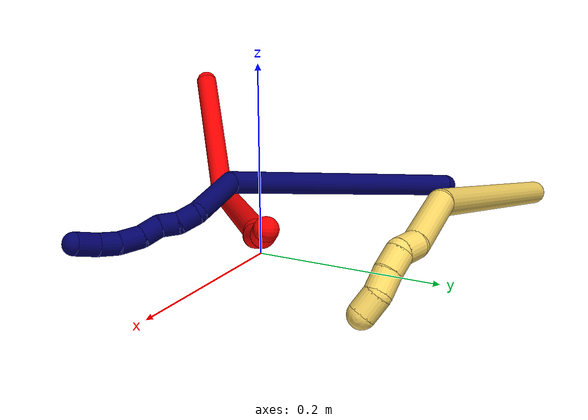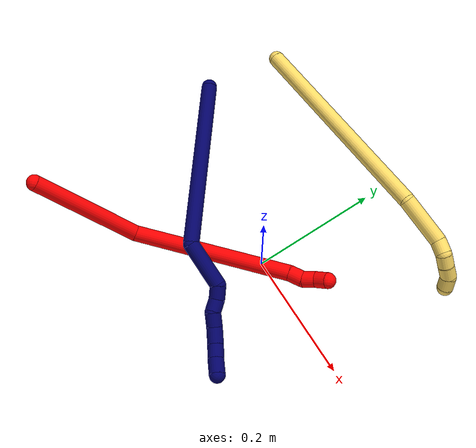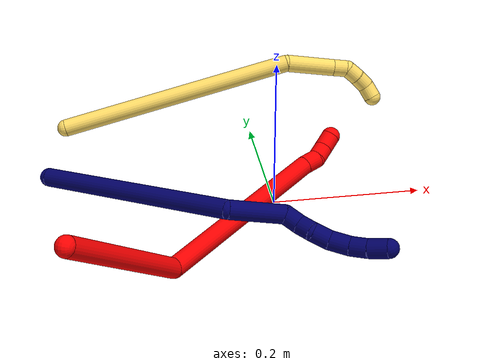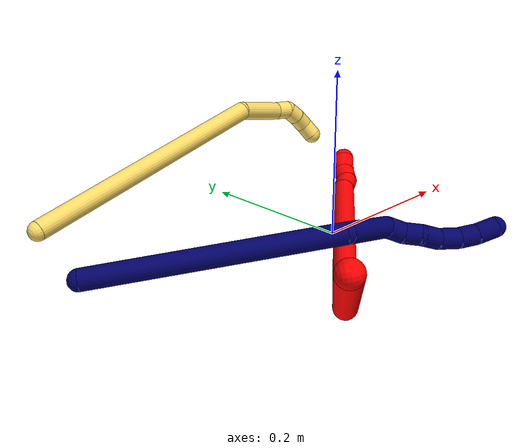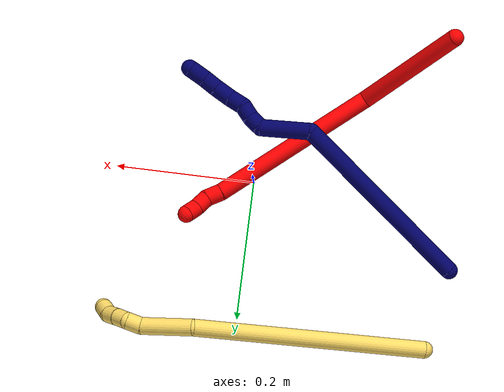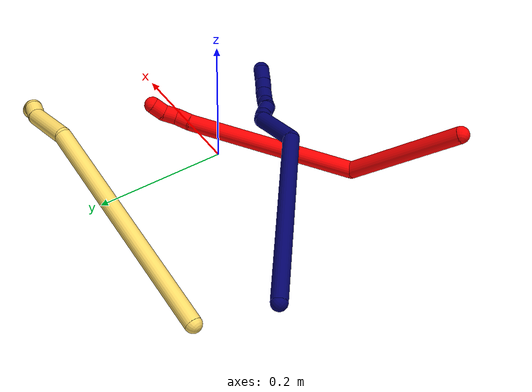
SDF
<sdf version="1.7">
 <world name="default">
  <model name="2">
   <static>0</static>
   <link name="2">
    <collision name="collision-cylinder-e_1_1_4">
     <pose>0.084828 -0.034982 0.005211 1.42292 1.17578 1.04302</pose>
     <geometry><cylinder><radius>0.0125</radius><length>0.183811</length></cylinder></geometry>
     <surface>
      <friction><ode><mu>1.16</mu><mu2>1.16</mu2><slip1>0</slip1><slip2>0</slip2></ode></friction>
      <contact><ode><kp>1e+06</kp><kd>1</kd><max_vel>0</max_vel><min_depth>0.001</min_depth></ode></contact>
     </surface>
    </collision>
    <visual name="visual-cylinder-e_1_1_4">
     <pose>0.084828 -0.034982 0.005211 1.42292 1.17578 1.04302</pose>
     <geometry><cylinder><radius>0.0125</radius><length>0.183811</length></cylinder></geometry>
     <material><ambient>1 0 0 1</ambient></material>
    </visual>
    <collision name="collision-cylinder-e_2_4_5">
     <pose>0.285411 -0.02598 0.034184 -1.07547 1.16312 -0.747261</pose>
     <geometry><cylinder><radius>0.0125</radius><length>0.252179</length></cylinder></geometry>
     <surface>
      <friction><ode><mu>1.16</mu><mu2>1.16</mu2><slip1>0</slip1><slip2>0</slip2></ode></friction>
      <contact><ode><kp>1e+06</kp><kd>1</kd><max_vel>0</max_vel><min_depth>0.001</min_depth></ode></contact>
     </surface>
    </collision>
    <visual name="visual-cylinder-e_2_4_5">
     <pose>0.285411 -0.02598 0.034184 -1.07547 1.16312 -0.747261</pose>
     <geometry><cylinder><radius>0.0125</radius><length>0.252179</length></cylinder></geometry>
     <material><ambient>1 0 0 1</ambient></material>
    </visual>
    <collision name="collision-cylinder-e_3_5_6">
     <pose>0.411002 0.021438 0.061988 -0.704292 1.07614 -0.431776</pose>
     <geometry><cylinder><radius>0.0125</radius><length>0.022348</length></cylinder></geometry>
     <surface>
      <friction><ode><mu>1.16</mu><mu2>1.16</mu2><slip1>0</slip1><slip2>0</slip2></ode></friction>
      <contact><ode><kp>1e+06</kp><kd>1</kd><max_vel>0</max_vel><min_depth>0.001</min_depth></ode></contact>
     </surface>
    </collision>
    <visual name="visual-cylinder-e_3_5_6">
     <pose>0.411002 0.021438 0.061988 -0.704292 1.07614 -0.431776</pose>
     <geometry><cylinder><radius>0.0125</radius><length>0.022348</length></cylinder></geometry>
     <material><ambient>1 0 0 1</ambient></material>
    </visual>
    <collision name="collision-cylinder-e_4_6_7">
     <pose>0.429712 0.030582 0.066377 -1.51021 0.998336 -0.948228</pose>
     <geometry><cylinder><radius>0.0125</radius><length>0.021117</length></cylinder></geometry>
     <surface>
      <friction><ode><mu>1.16</mu><mu2>1.16</mu2><slip1>0</slip1><slip2>0</slip2></ode></friction>
      <contact><ode><kp>1e+06</kp><kd>1</kd><max_vel>0</max_vel><min_depth>0.001</min_depth></ode></contact>
     </surface>
    </collision>
    <visual name="visual-cylinder-e_4_6_7">
     <pose>0.429712 0.030582 0.066377 -1.51021 0.998336 -0.948228</pose>
     <geometry><cylinder><radius>0.0125</radius><length>0.021117</length></cylinder></geometry>
     <material><ambient>1 0 0 1</ambient></material>
    </visual>
    <collision name="collision-cylinder-e_5_7_2">
     <pose>0.445244 0.043821 0.068843 -1.29643 0.705091 -0.543525</pose>
     <geometry><cylinder><radius>0.0125</radius><length>0.020545</length></cylinder></geometry>
     <surface>
      <friction><ode><mu>1.16</mu><mu2>1.16</mu2><slip1>0</slip1><slip2>0</slip2></ode></friction>
      <contact><ode><kp>1e+06</kp><kd>1</kd><max_vel>0</max_vel><min_depth>0.001</min_depth></ode></contact>
     </surface>
    </collision>
    <visual name="visual-cylinder-e_5_7_2">
     <pose>0.445244 0.043821 0.068843 -1.29643 0.705091 -0.543525</pose>
     <geometry><cylinder><radius>0.0125</radius><length>0.020545</length></cylinder></geometry>
     <material><ambient>1 0 0 1</ambient></material>
    </visual>
    <collision name="collision-sphere-2">
     <pose>0.451902 0.051351 0.070962 0 -0 0</pose>
     <geometry><sphere><radius>0.0125</radius></sphere></geometry>
     <surface>
      <friction><ode><mu>1.16</mu><mu2>1.16</mu2><slip1>0</slip1><slip2>0</slip2></ode></friction>
      <contact><ode><kp>1e+06</kp><kd>1</kd><max_vel>0</max_vel><min_depth>0.001</min_depth></ode></contact>
     </surface>
    </collision>
    <visual name="visual-sphere-2">
     <pose>0.451902 0.051351 0.070962 0 -0 0</pose>
     <geometry><sphere><radius>0.0125</radius></sphere></geometry>
     <material><ambient>1 0 0 1</ambient></material>
    </visual>
    <collision name="collision-sphere-7">
     <pose>0.438587 0.036291 0.066723 0 -0 0</pose>
     <geometry><sphere><radius>0.0125</radius></sphere></geometry>
     <surface>
      <friction><ode><mu>1.16</mu><mu2>1.16</mu2><slip1>0</slip1><slip2>0</slip2></ode></friction>
      <contact><ode><kp>1e+06</kp><kd>1</kd><max_vel>0</max_vel><min_depth>0.001</min_depth></ode></contact>
     </surface>
    </collision>
    <visual name="visual-sphere-7">
     <pose>0.438587 0.036291 0.066723 0 -0 0</pose>
     <geometry><sphere><radius>0.0125</radius></sphere></geometry>
     <material><ambient>1 0 0 1</ambient></material>
    </visual>
    <collision name="collision-sphere-6">
     <pose>0.420837 0.024872 0.066031 0 -0 0</pose>
     <geometry><sphere><radius>0.0125</radius></sphere></geometry>
     <surface>
      <friction><ode><mu>1.16</mu><mu2>1.16</mu2><slip1>0</slip1><slip2>0</slip2></ode></friction>
      <contact><ode><kp>1e+06</kp><kd>1</kd><max_vel>0</max_vel><min_depth>0.001</min_depth></ode></contact>
     </surface>
    </collision>
    <visual name="visual-sphere-6">
     <pose>0.420837 0.024872 0.066031 0 -0 0</pose>
     <geometry><sphere><radius>0.0125</radius></sphere></geometry>
     <material><ambient>1 0 0 1</ambient></material>
    </visual>
    <collision name="collision-sphere-5">
     <pose>0.401167 0.018003 0.057946 0 -0 0</pose>
     <geometry><sphere><radius>0.0125</radius></sphere></geometry>
     <surface>
      <friction><ode><mu>1.16</mu><mu2>1.16</mu2><slip1>0</slip1><slip2>0</slip2></ode></friction>
      <contact><ode><kp>1e+06</kp><kd>1</kd><max_vel>0</max_vel><min_depth>0.001</min_depth></ode></contact>
     </surface>
    </collision>
    <visual name="visual-sphere-5">
     <pose>0.401167 0.018003 0.057946 0 -0 0</pose>
     <geometry><sphere><radius>0.0125</radius></sphere></geometry>
     <material><ambient>1 0 0 1</ambient></material>
    </visual>
    <collision name="collision-sphere-1">
     <geometry><sphere><radius>0.0125</radius></sphere></geometry>
     <surface>
      <friction><ode><mu>1.16</mu><mu2>1.16</mu2><slip1>0</slip1><slip2>0</slip2></ode></friction>
      <contact><ode><kp>1e+06</kp><kd>1</kd><max_vel>0</max_vel><min_depth>0.001</min_depth></ode></contact>
     </surface>
    </collision>
    <visual name="visual-sphere-1">
     <geometry><sphere><radius>0.0125</radius></sphere></geometry>
     <material><ambient>1 0 0 1</ambient></material>
    </visual>
    <collision name="collision-sphere-4">
     <pose>0.169655 -0.069963 0.010422 0 -0 0</pose>
     <geometry><sphere><radius>0.0125</radius></sphere></geometry>
     <surface>
      <friction><ode><mu>1.16</mu><mu2>1.16</mu2><slip1>0</slip1><slip2>0</slip2></ode></friction>
      <contact><ode><kp>1e+06</kp><kd>1</kd><max_vel>0</max_vel><min_depth>0.001</min_depth></ode></contact>
     </surface>
    </collision>
    <visual name="visual-sphere-4">
     <pose>0.169655 -0.069963 0.010422 0 -0 0</pose>
     <geometry><sphere><radius>0.0125</radius></sphere></geometry>
     <material><ambient>1 0 0 1</ambient></material>
    </visual>
    <inertial>
     <pose>0.229948 -0.021913 0.027559 0 -0 0</pose>
     <mass>0.5</mass>
     <inertia>
      <ixx>0.000341</ixx>
      <ixy>0</ixy>
      <ixz>0</ixz>
      <iyy>0.001479</iyy>
      <iyz>0</iyz>
      <izz>-0.001991</izz>
     </inertia>
    </inertial>
   </link>
   <pose>-0.260076 -0.233716 0.122152 1.40958 0.270618 0.833934</pose>
  </model>
  <model name="5">
   <static>0</static>
   <link name="5">
    <collision name="collision-cylinder-e_1_1_4">
     <pose>0.009262 0.022871 -0.169185 -3.00722 0.054198 -0.765906</pose>
     <geometry><cylinder><radius>0.0125</radius><length>0.34195</length></cylinder></geometry>
     <surface>
      <friction><ode><mu>1.16</mu><mu2>1.16</mu2><slip1>0</slip1><slip2>0</slip2></ode></friction>
      <contact><ode><kp>1e+06</kp><kd>1</kd><max_vel>0</max_vel><min_depth>0.001</min_depth></ode></contact>
     </surface>
    </collision>
    <visual name="visual-cylinder-e_1_1_4">
     <pose>0.009262 0.022871 -0.169185 -3.00722 0.054198 -0.765906</pose>
     <geometry><cylinder><radius>0.0125</radius><length>0.34195</length></cylinder></geometry>
     <material><ambient>1 0.858824 0.4 1</ambient></material>
    </visual>
    <collision name="collision-cylinder-e_2_4_5">
     <pose>0.0243 0.034955 -0.374177 2.84899 0.153256 0.960677</pose>
     <geometry><cylinder><radius>0.0125</radius><length>0.07568</length></cylinder></geometry>
     <surface>
      <friction><ode><mu>1.16</mu><mu2>1.16</mu2><slip1>0</slip1><slip2>0</slip2></ode></friction>
      <contact><ode><kp>1e+06</kp><kd>1</kd><max_vel>0</max_vel><min_depth>0.001</min_depth></ode></contact>
     </surface>
    </collision>
    <visual name="visual-cylinder-e_2_4_5">
     <pose>0.0243 0.034955 -0.374177 2.84899 0.153256 0.960677</pose>
     <geometry><cylinder><radius>0.0125</radius><length>0.07568</length></cylinder></geometry>
     <material><ambient>1 0.858824 0.4 1</ambient></material>
    </visual>
    <collision name="collision-cylinder-e_3_5_6">
     <pose>0.034306 0.02391 -0.419927 3.11561 0.401992 3.01422</pose>
     <geometry><cylinder><radius>0.0125</radius><length>0.021616</length></cylinder></geometry>
     <surface>
      <friction><ode><mu>1.16</mu><mu2>1.16</mu2><slip1>0</slip1><slip2>0</slip2></ode></friction>
      <contact><ode><kp>1e+06</kp><kd>1</kd><max_vel>0</max_vel><min_depth>0.001</min_depth></ode></contact>
     </surface>
    </collision>
    <visual name="visual-cylinder-e_3_5_6">
     <pose>0.034306 0.02391 -0.419927 3.11561 0.401992 3.01422</pose>
     <geometry><cylinder><radius>0.0125</radius><length>0.021616</length></cylinder></geometry>
     <material><ambient>1 0.858824 0.4 1</ambient></material>
    </visual>
    <collision name="collision-cylinder-e_4_6_7">
     <pose>0.043798 0.017839 -0.436194 2.39831 0.549826 1.25288</pose>
     <geometry><cylinder><radius>0.0125</radius><length>0.020147</length></cylinder></geometry>
     <surface>
      <friction><ode><mu>1.16</mu><mu2>1.16</mu2><slip1>0</slip1><slip2>0</slip2></ode></friction>
      <contact><ode><kp>1e+06</kp><kd>1</kd><max_vel>0</max_vel><min_depth>0.001</min_depth></ode></contact>
     </surface>
    </collision>
    <visual name="visual-cylinder-e_4_6_7">
     <pose>0.043798 0.017839 -0.436194 2.39831 0.549826 1.25288</pose>
     <geometry><cylinder><radius>0.0125</radius><length>0.020147</length></cylinder></geometry>
     <material><ambient>1 0.858824 0.4 1</ambient></material>
    </visual>
    <collision name="collision-cylinder-e_5_7_8">
     <pose>0.053997 0.005237 -0.448284 2.2748 0.505911 1.01886</pose>
     <geometry><cylinder><radius>0.0125</radius><length>0.020367</length></cylinder></geometry>
     <surface>
      <friction><ode><mu>1.16</mu><mu2>1.16</mu2><slip1>0</slip1><slip2>0</slip2></ode></friction>
      <contact><ode><kp>1e+06</kp><kd>1</kd><max_vel>0</max_vel><min_depth>0.001</min_depth></ode></contact>
     </surface>
    </collision>
    <visual name="visual-cylinder-e_5_7_8">
     <pose>0.053997 0.005237 -0.448284 2.2748 0.505911 1.01886</pose>
     <geometry><cylinder><radius>0.0125</radius><length>0.020367</length></cylinder></geometry>
     <material><ambient>1 0.858824 0.4 1</ambient></material>
    </visual>
    <collision name="collision-cylinder-e_6_8_2">
     <pose>0.066779 -0.007265 -0.456914 2.03564 0.887416 1.31249</pose>
     <geometry><cylinder><radius>0.0125</radius><length>0.020239</length></cylinder></geometry>
     <surface>
      <friction><ode><mu>1.16</mu><mu2>1.16</mu2><slip1>0</slip1><slip2>0</slip2></ode></friction>
      <contact><ode><kp>1e+06</kp><kd>1</kd><max_vel>0</max_vel><min_depth>0.001</min_depth></ode></contact>
     </surface>
    </collision>
    <visual name="visual-cylinder-e_6_8_2">
     <pose>0.066779 -0.007265 -0.456914 2.03564 0.887416 1.31249</pose>
     <geometry><cylinder><radius>0.0125</radius><length>0.020239</length></cylinder></geometry>
     <material><ambient>1 0.858824 0.4 1</ambient></material>
    </visual>
    <collision name="collision-sphere-2">
     <pose>0.074626 -0.012977 -0.459778 0 -0 0</pose>
     <geometry><sphere><radius>0.0125</radius></sphere></geometry>
     <surface>
      <friction><ode><mu>1.16</mu><mu2>1.16</mu2><slip1>0</slip1><slip2>0</slip2></ode></friction>
      <contact><ode><kp>1e+06</kp><kd>1</kd><max_vel>0</max_vel><min_depth>0.001</min_depth></ode></contact>
     </surface>
    </collision>
    <visual name="visual-sphere-2">
     <pose>0.074626 -0.012977 -0.459778 0 -0 0</pose>
     <geometry><sphere><radius>0.0125</radius></sphere></geometry>
     <material><ambient>1 0.858824 0.4 1</ambient></material>
    </visual>
    <collision name="collision-sphere-4">
     <pose>0.018524 0.045742 -0.33837 0 -0 0</pose>
     <geometry><sphere><radius>0.0125</radius></sphere></geometry>
     <surface>
      <friction><ode><mu>1.16</mu><mu2>1.16</mu2><slip1>0</slip1><slip2>0</slip2></ode></friction>
      <contact><ode><kp>1e+06</kp><kd>1</kd><max_vel>0</max_vel><min_depth>0.001</min_depth></ode></contact>
     </surface>
    </collision>
    <visual name="visual-sphere-4">
     <pose>0.018524 0.045742 -0.33837 0 -0 0</pose>
     <geometry><sphere><radius>0.0125</radius></sphere></geometry>
     <material><ambient>1 0.858824 0.4 1</ambient></material>
    </visual>
    <collision name="collision-sphere-1">
     <geometry><sphere><radius>0.0125</radius></sphere></geometry>
     <surface>
      <friction><ode><mu>1.16</mu><mu2>1.16</mu2><slip1>0</slip1><slip2>0</slip2></ode></friction>
      <contact><ode><kp>1e+06</kp><kd>1</kd><max_vel>0</max_vel><min_depth>0.001</min_depth></ode></contact>
     </surface>
    </collision>
    <visual name="visual-sphere-1">
     <geometry><sphere><radius>0.0125</radius></sphere></geometry>
     <material><ambient>1 0.858824 0.4 1</ambient></material>
    </visual>
    <collision name="collision-sphere-8">
     <pose>0.058932 -0.001553 -0.454049 0 -0 0</pose>
     <geometry><sphere><radius>0.0125</radius></sphere></geometry>
     <surface>
      <friction><ode><mu>1.16</mu><mu2>1.16</mu2><slip1>0</slip1><slip2>0</slip2></ode></friction>
      <contact><ode><kp>1e+06</kp><kd>1</kd><max_vel>0</max_vel><min_depth>0.001</min_depth></ode></contact>
     </surface>
    </collision>
    <visual name="visual-sphere-8">
     <pose>0.058932 -0.001553 -0.454049 0 -0 0</pose>
     <geometry><sphere><radius>0.0125</radius></sphere></geometry>
     <material><ambient>1 0.858824 0.4 1</ambient></material>
    </visual>
    <collision name="collision-sphere-5">
     <pose>0.030077 0.024168 -0.409984 0 -0 0</pose>
     <geometry><sphere><radius>0.0125</radius></sphere></geometry>
     <surface>
      <friction><ode><mu>1.16</mu><mu2>1.16</mu2><slip1>0</slip1><slip2>0</slip2></ode></friction>
      <contact><ode><kp>1e+06</kp><kd>1</kd><max_vel>0</max_vel><min_depth>0.001</min_depth></ode></contact>
     </surface>
    </collision>
    <visual name="visual-sphere-5">
     <pose>0.030077 0.024168 -0.409984 0 -0 0</pose>
     <geometry><sphere><radius>0.0125</radius></sphere></geometry>
     <material><ambient>1 0.858824 0.4 1</ambient></material>
    </visual>
    <collision name="collision-sphere-6">
     <pose>0.038534 0.023651 -0.429871 0 -0 0</pose>
     <geometry><sphere><radius>0.0125</radius></sphere></geometry>
     <surface>
      <friction><ode><mu>1.16</mu><mu2>1.16</mu2><slip1>0</slip1><slip2>0</slip2></ode></friction>
      <contact><ode><kp>1e+06</kp><kd>1</kd><max_vel>0</max_vel><min_depth>0.001</min_depth></ode></contact>
     </surface>
    </collision>
    <visual name="visual-sphere-6">
     <pose>0.038534 0.023651 -0.429871 0 -0 0</pose>
     <geometry><sphere><radius>0.0125</radius></sphere></geometry>
     <material><ambient>1 0.858824 0.4 1</ambient></material>
    </visual>
    <collision name="collision-sphere-7">
     <pose>0.049062 0.012027 -0.442518 0 -0 0</pose>
     <geometry><sphere><radius>0.0125</radius></sphere></geometry>
     <surface>
      <friction><ode><mu>1.16</mu><mu2>1.16</mu2><slip1>0</slip1><slip2>0</slip2></ode></friction>
      <contact><ode><kp>1e+06</kp><kd>1</kd><max_vel>0</max_vel><min_depth>0.001</min_depth></ode></contact>
     </surface>
    </collision>
    <visual name="visual-sphere-7">
     <pose>0.049062 0.012027 -0.442518 0 -0 0</pose>
     <geometry><sphere><radius>0.0125</radius></sphere></geometry>
     <material><ambient>1 0.858824 0.4 1</ambient></material>
    </visual>
    <inertial>
     <pose>0.018163 0.022604 -0.244828 0 -0 0</pose>
     <mass>0.5</mass>
     <inertia>
      <ixx>0.000155</ixx>
      <ixy>0</ixy>
      <ixz>0</ixz>
      <iyy>-0.004672</iyy>
      <iyz>0</iyz>
      <izz>-0.00066</izz>
     </inertia>
    </inertial>
   </link>
   <pose>-0.274266 0.210228 0.024065 1.70177 0.36574 -1.39225</pose>
  </model>
  <model name="7">
   <static>0</static>
   <link name="7">
    <collision name="collision-cylinder-e_1_1_4">
     <pose>0.067151 -0.089622 -0.08786 2.34626 0.491291 1.07622</pose>
     <geometry><cylinder><radius>0.0125</radius><length>0.28468</length></cylinder></geometry>
     <surface>
      <friction><ode><mu>1.16</mu><mu2>1.16</mu2><slip1>0</slip1><slip2>0</slip2></ode></friction>
      <contact><ode><kp>1e+06</kp><kd>1</kd><max_vel>0</max_vel><min_depth>0.001</min_depth></ode></contact>
     </surface>
    </collision>
    <visual name="visual-cylinder-e_1_1_4">
     <pose>0.067151 -0.089622 -0.08786 2.34626 0.491291 1.07622</pose>
     <geometry><cylinder><radius>0.0125</radius><length>0.28468</length></cylinder></geometry>
     <material><ambient>0.003922 0 0.403922 1</ambient></material>
    </visual>
    <collision name="collision-cylinder-e_2_4_5">
     <pose>0.125839 -0.197535 -0.207072 2.61346 -0.229071 -0.804545</pose>
     <geometry><cylinder><radius>0.0125</radius><length>0.074542</length></cylinder></geometry>
     <surface>
      <friction><ode><mu>1.16</mu><mu2>1.16</mu2><slip1>0</slip1><slip2>0</slip2></ode></friction>
      <contact><ode><kp>1e+06</kp><kd>1</kd><max_vel>0</max_vel><min_depth>0.001</min_depth></ode></contact>
     </surface>
    </collision>
    <visual name="visual-cylinder-e_2_4_5">
     <pose>0.125839 -0.197535 -0.207072 2.61346 -0.229071 -0.804545</pose>
     <geometry><cylinder><radius>0.0125</radius><length>0.074542</length></cylinder></geometry>
     <material><ambient>0.003922 0 0.403922 1</ambient></material>
    </visual>
    <collision name="collision-cylinder-e_3_5_6">
     <pose>0.11833 -0.225963 -0.243041 1.99824 0.085497 0.132782</pose>
     <geometry><cylinder><radius>0.0125</radius><length>0.022359</length></cylinder></geometry>
     <surface>
      <friction><ode><mu>1.16</mu><mu2>1.16</mu2><slip1>0</slip1><slip2>0</slip2></ode></friction>
      <contact><ode><kp>1e+06</kp><kd>1</kd><max_vel>0</max_vel><min_depth>0.001</min_depth></ode></contact>
     </surface>
    </collision>
    <visual name="visual-cylinder-e_3_5_6">
     <pose>0.11833 -0.225963 -0.243041 1.99824 0.085497 0.132782</pose>
     <geometry><cylinder><radius>0.0125</radius><length>0.022359</length></cylinder></geometry>
     <material><ambient>0.003922 0 0.403922 1</ambient></material>
    </visual>
    <collision name="collision-cylinder-e_4_6_7">
     <pose>0.123787 -0.244437 -0.25157 2.0094 0.45466 0.69823</pose>
     <geometry><cylinder><radius>0.0125</radius><length>0.020503</length></cylinder></geometry>
     <surface>
      <friction><ode><mu>1.16</mu><mu2>1.16</mu2><slip1>0</slip1><slip2>0</slip2></ode></friction>
      <contact><ode><kp>1e+06</kp><kd>1</kd><max_vel>0</max_vel><min_depth>0.001</min_depth></ode></contact>
     </surface>
    </collision>
    <visual name="visual-cylinder-e_4_6_7">
     <pose>0.123787 -0.244437 -0.25157 2.0094 0.45466 0.69823</pose>
     <geometry><cylinder><radius>0.0125</radius><length>0.020503</length></cylinder></geometry>
     <material><ambient>0.003922 0 0.403922 1</ambient></material>
    </visual>
    <collision name="collision-cylinder-e_5_7_8">
     <pose>0.12823 -0.262205 -0.262058 2.17984 -0.005107 -0.009789</pose>
     <geometry><cylinder><radius>0.0125</radius><length>0.022995</length></cylinder></geometry>
     <surface>
      <friction><ode><mu>1.16</mu><mu2>1.16</mu2><slip1>0</slip1><slip2>0</slip2></ode></friction>
      <contact><ode><kp>1e+06</kp><kd>1</kd><max_vel>0</max_vel><min_depth>0.001</min_depth></ode></contact>
     </surface>
    </collision>
    <visual name="visual-cylinder-e_5_7_8">
     <pose>0.12823 -0.262205 -0.262058 2.17984 -0.005107 -0.009789</pose>
     <geometry><cylinder><radius>0.0125</radius><length>0.022995</length></cylinder></geometry>
     <material><ambient>0.003922 0 0.403922 1</ambient></material>
    </visual>
    <collision name="collision-cylinder-e_6_8_9">
     <pose>0.131142 -0.281192 -0.277384 2.31206 0.225437 0.503275</pose>
     <geometry><cylinder><radius>0.0125</radius><length>0.026584</length></cylinder></geometry>
     <surface>
      <friction><ode><mu>1.16</mu><mu2>1.16</mu2><slip1>0</slip1><slip2>0</slip2></ode></friction>
      <contact><ode><kp>1e+06</kp><kd>1</kd><max_vel>0</max_vel><min_depth>0.001</min_depth></ode></contact>
     </surface>
    </collision>
    <visual name="visual-cylinder-e_6_8_9">
     <pose>0.131142 -0.281192 -0.277384 2.31206 0.225437 0.503275</pose>
     <geometry><cylinder><radius>0.0125</radius><length>0.026584</length></cylinder></geometry>
     <material><ambient>0.003922 0 0.403922 1</ambient></material>
    </visual>
    <collision name="collision-cylinder-e_7_9_10">
     <pose>0.138522 -0.297577 -0.293997 2.4266 0.400333 0.995101</pose>
     <geometry><cylinder><radius>0.0125</radius><length>0.022622</length></cylinder></geometry>
     <surface>
      <friction><ode><mu>1.16</mu><mu2>1.16</mu2><slip1>0</slip1><slip2>0</slip2></ode></friction>
      <contact><ode><kp>1e+06</kp><kd>1</kd><max_vel>0</max_vel><min_depth>0.001</min_depth></ode></contact>
     </surface>
    </collision>
    <visual name="visual-cylinder-e_7_9_10">
     <pose>0.138522 -0.297577 -0.293997 2.4266 0.400333 0.995101</pose>
     <geometry><cylinder><radius>0.0125</radius><length>0.022622</length></cylinder></geometry>
     <material><ambient>0.003922 0 0.403922 1</ambient></material>
    </visual>
    <collision name="collision-cylinder-e_8_10_2">
     <pose>0.148437 -0.310676 -0.311645 2.57165 0.442598 1.30986</pose>
     <geometry><cylinder><radius>0.0125</radius><length>0.025715</length></cylinder></geometry>
     <surface>
      <friction><ode><mu>1.16</mu><mu2>1.16</mu2><slip1>0</slip1><slip2>0</slip2></ode></friction>
      <contact><ode><kp>1e+06</kp><kd>1</kd><max_vel>0</max_vel><min_depth>0.001</min_depth></ode></contact>
     </surface>
    </collision>
    <visual name="visual-cylinder-e_8_10_2">
     <pose>0.148437 -0.310676 -0.311645 2.57165 0.442598 1.30986</pose>
     <geometry><cylinder><radius>0.0125</radius><length>0.025715</length></cylinder></geometry>
     <material><ambient>0.003922 0 0.403922 1</ambient></material>
    </visual>
    <collision name="collision-sphere-2">
     <pose>0.153944 -0.316945 -0.321427 0 -0 0</pose>
     <geometry><sphere><radius>0.0125</radius></sphere></geometry>
     <surface>
      <friction><ode><mu>1.16</mu><mu2>1.16</mu2><slip1>0</slip1><slip2>0</slip2></ode></friction>
      <contact><ode><kp>1e+06</kp><kd>1</kd><max_vel>0</max_vel><min_depth>0.001</min_depth></ode></contact>
     </surface>
    </collision>
    <visual name="visual-sphere-2">
     <pose>0.153944 -0.316945 -0.321427 0 -0 0</pose>
     <geometry><sphere><radius>0.0125</radius></sphere></geometry>
     <material><ambient>0.003922 0 0.403922 1</ambient></material>
    </visual>
    <collision name="collision-sphere-10">
     <pose>0.14293 -0.304406 -0.301863 0 -0 0</pose>
     <geometry><sphere><radius>0.0125</radius></sphere></geometry>
     <surface>
      <friction><ode><mu>1.16</mu><mu2>1.16</mu2><slip1>0</slip1><slip2>0</slip2></ode></friction>
      <contact><ode><kp>1e+06</kp><kd>1</kd><max_vel>0</max_vel><min_depth>0.001</min_depth></ode></contact>
     </surface>
    </collision>
    <visual name="visual-sphere-10">
     <pose>0.14293 -0.304406 -0.301863 0 -0 0</pose>
     <geometry><sphere><radius>0.0125</radius></sphere></geometry>
     <material><ambient>0.003922 0 0.403922 1</ambient></material>
    </visual>
    <collision name="collision-sphere-9">
     <pose>0.134114 -0.290748 -0.286131 0 -0 0</pose>
     <geometry><sphere><radius>0.0125</radius></sphere></geometry>
     <surface>
      <friction><ode><mu>1.16</mu><mu2>1.16</mu2><slip1>0</slip1><slip2>0</slip2></ode></friction>
      <contact><ode><kp>1e+06</kp><kd>1</kd><max_vel>0</max_vel><min_depth>0.001</min_depth></ode></contact>
     </surface>
    </collision>
    <visual name="visual-sphere-9">
     <pose>0.134114 -0.290748 -0.286131 0 -0 0</pose>
     <geometry><sphere><radius>0.0125</radius></sphere></geometry>
     <material><ambient>0.003922 0 0.403922 1</ambient></material>
    </visual>
    <collision name="collision-sphere-4">
     <pose>0.134302 -0.179244 -0.17572 0 -0 0</pose>
     <geometry><sphere><radius>0.0125</radius></sphere></geometry>
     <surface>
      <friction><ode><mu>1.16</mu><mu2>1.16</mu2><slip1>0</slip1><slip2>0</slip2></ode></friction>
      <contact><ode><kp>1e+06</kp><kd>1</kd><max_vel>0</max_vel><min_depth>0.001</min_depth></ode></contact>
     </surface>
    </collision>
    <visual name="visual-sphere-4">
     <pose>0.134302 -0.179244 -0.17572 0 -0 0</pose>
     <geometry><sphere><radius>0.0125</radius></sphere></geometry>
     <material><ambient>0.003922 0 0.403922 1</ambient></material>
    </visual>
    <collision name="collision-sphere-1">
     <geometry><sphere><radius>0.0125</radius></sphere></geometry>
     <surface>
      <friction><ode><mu>1.16</mu><mu2>1.16</mu2><slip1>0</slip1><slip2>0</slip2></ode></friction>
      <contact><ode><kp>1e+06</kp><kd>1</kd><max_vel>0</max_vel><min_depth>0.001</min_depth></ode></contact>
     </surface>
    </collision>
    <visual name="visual-sphere-1">
     <geometry><sphere><radius>0.0125</radius></sphere></geometry>
     <material><ambient>0.003922 0 0.403922 1</ambient></material>
    </visual>
    <collision name="collision-sphere-8">
     <pose>0.128171 -0.271635 -0.268636 0 -0 0</pose>
     <geometry><sphere><radius>0.0125</radius></sphere></geometry>
     <surface>
      <friction><ode><mu>1.16</mu><mu2>1.16</mu2><slip1>0</slip1><slip2>0</slip2></ode></friction>
      <contact><ode><kp>1e+06</kp><kd>1</kd><max_vel>0</max_vel><min_depth>0.001</min_depth></ode></contact>
     </surface>
    </collision>
    <visual name="visual-sphere-8">
     <pose>0.128171 -0.271635 -0.268636 0 -0 0</pose>
     <geometry><sphere><radius>0.0125</radius></sphere></geometry>
     <material><ambient>0.003922 0 0.403922 1</ambient></material>
    </visual>
    <collision name="collision-sphere-5">
     <pose>0.117376 -0.215826 -0.238424 0 -0 0</pose>
     <geometry><sphere><radius>0.0125</radius></sphere></geometry>
     <surface>
      <friction><ode><mu>1.16</mu><mu2>1.16</mu2><slip1>0</slip1><slip2>0</slip2></ode></friction>
      <contact><ode><kp>1e+06</kp><kd>1</kd><max_vel>0</max_vel><min_depth>0.001</min_depth></ode></contact>
     </surface>
    </collision>
    <visual name="visual-sphere-5">
     <pose>0.117376 -0.215826 -0.238424 0 -0 0</pose>
     <geometry><sphere><radius>0.0125</radius></sphere></geometry>
     <material><ambient>0.003922 0 0.403922 1</ambient></material>
    </visual>
    <collision name="collision-sphere-6">
     <pose>0.119285 -0.236099 -0.247659 0 -0 0</pose>
     <geometry><sphere><radius>0.0125</radius></sphere></geometry>
     <surface>
      <friction><ode><mu>1.16</mu><mu2>1.16</mu2><slip1>0</slip1><slip2>0</slip2></ode></friction>
      <contact><ode><kp>1e+06</kp><kd>1</kd><max_vel>0</max_vel><min_depth>0.001</min_depth></ode></contact>
     </surface>
    </collision>
    <visual name="visual-sphere-6">
     <pose>0.119285 -0.236099 -0.247659 0 -0 0</pose>
     <geometry><sphere><radius>0.0125</radius></sphere></geometry>
     <material><ambient>0.003922 0 0.403922 1</ambient></material>
    </visual>
    <collision name="collision-sphere-7">
     <pose>0.128289 -0.252775 -0.255481 0 -0 0</pose>
     <geometry><sphere><radius>0.0125</radius></sphere></geometry>
     <surface>
      <friction><ode><mu>1.16</mu><mu2>1.16</mu2><slip1>0</slip1><slip2>0</slip2></ode></friction>
      <contact><ode><kp>1e+06</kp><kd>1</kd><max_vel>0</max_vel><min_depth>0.001</min_depth></ode></contact>
     </surface>
    </collision>
    <visual name="visual-sphere-7">
     <pose>0.128289 -0.252775 -0.255481 0 -0 0</pose>
     <geometry><sphere><radius>0.0125</radius></sphere></geometry>
     <material><ambient>0.003922 0 0.403922 1</ambient></material>
    </visual>
    <inertial>
     <pose>0.094132 -0.157055 -0.158208 0 -0 0</pose>
     <mass>0.5</mass>
     <inertia>
      <ixx>0.002335</ixx>
      <ixy>0</ixy>
      <ixz>0</ixz>
      <iyy>0.001363</iyy>
      <iyz>0</iyz>
      <izz>0.000312</izz>
     </inertia>
    </inertial>
   </link>
   <pose>-0.296733 0.091719 0.012029 2.02389 -0.794308 -1.65174</pose>
  </model>
 </world>
</sdf>
